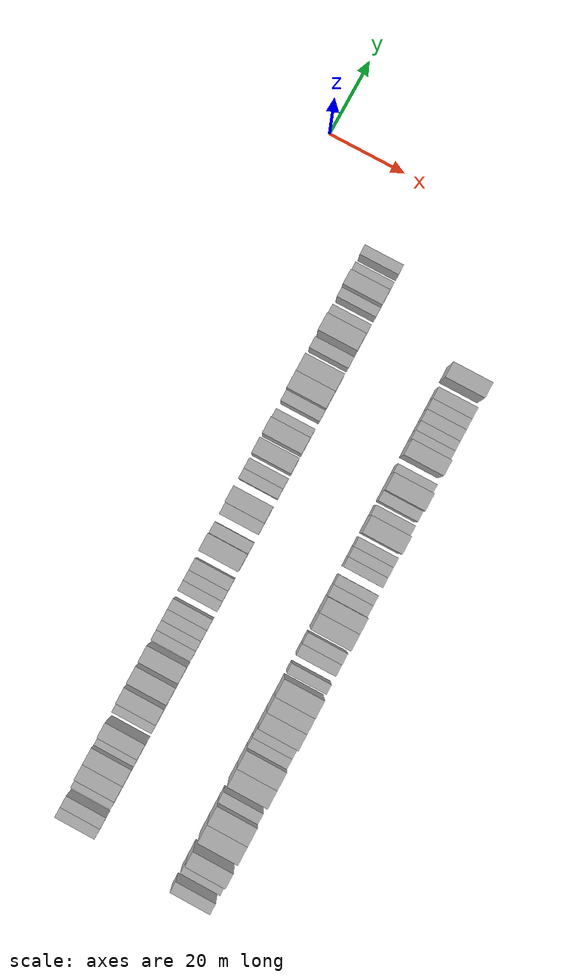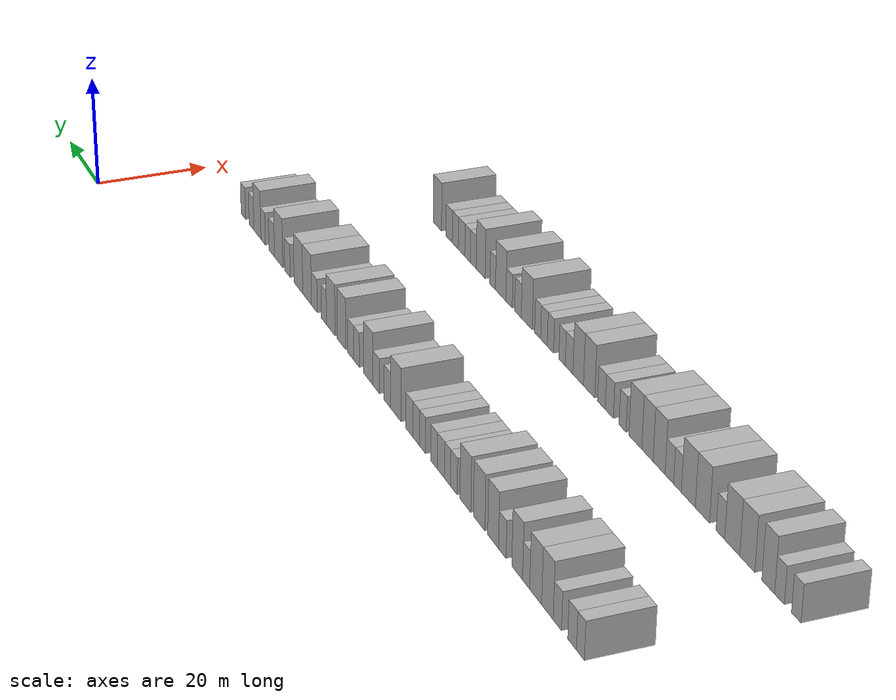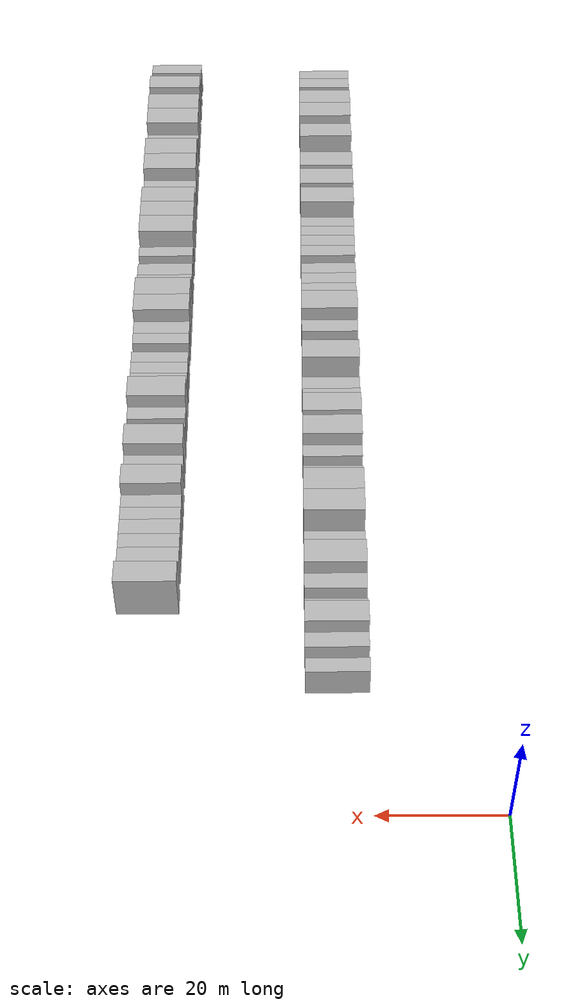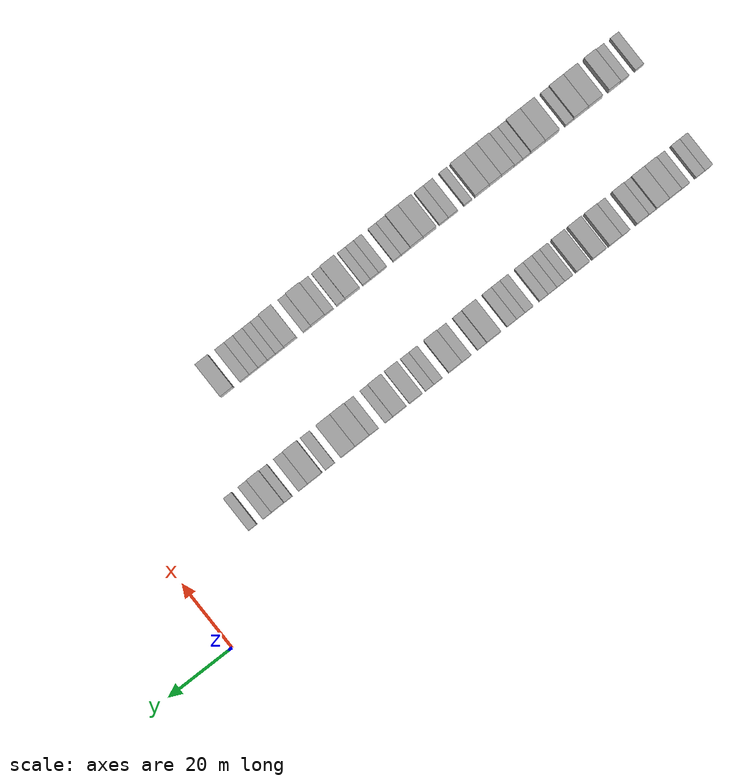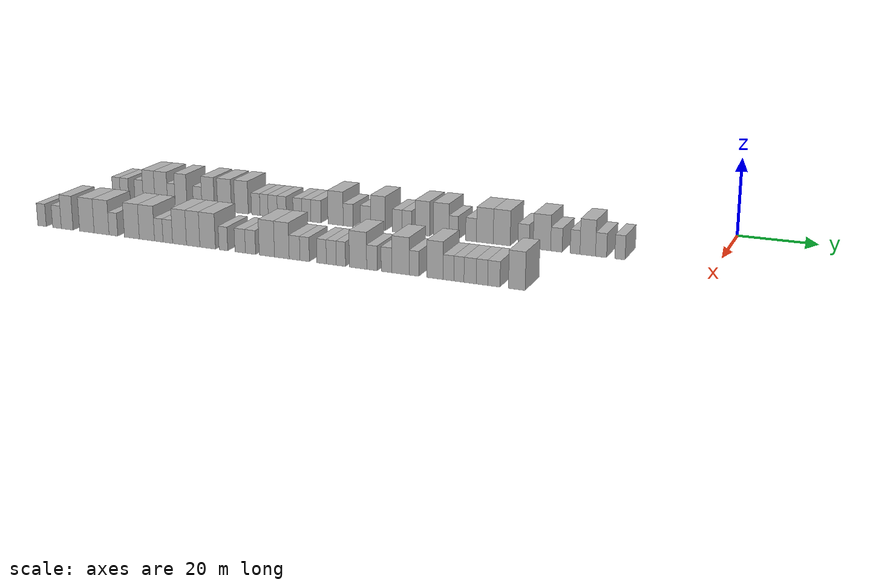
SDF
<sdf version="1.6">
 <world name="default">
  <model name="building_72">
   <static>1</static>
   <pose>25.0000 -165.1030 0 0.000000 0.000000 0.000000</pose>
   <link name="link">
    <pose>0 0 3.00 0 0 0</pose>
    <collision name="collision"><geometry><box><size>10.0000 2.4681 6.0000</size></box></geometry></collision>
    <visual name="visual">
     <cast_shadows>0</cast_shadows>
     <geometry><box><size>10.0000 2.4681 6.0000</size></box></geometry>
     <material>
      <script>
       <uri>model://HANNAS_wall/materials/scripts</uri>
       <uri>model://HANNAS_wall/materials/textures</uri>
       <name>vrc/HANNAS_wall</name>
      </script>
     </material>
    </visual>
   </link>
  </model>
  <model name="building_73">
   <static>1</static>
   <pose>25.0000 -162.4802 0 0.000000 0.000000 0.000000</pose>
   <link name="link">
    <pose>0 0 3.00 0 0 0</pose>
    <collision name="collision"><geometry><box><size>10.0000 2.7776 6.0000</size></box></geometry></collision>
    <visual name="visual">
     <cast_shadows>0</cast_shadows>
     <geometry><box><size>10.0000 2.7776 6.0000</size></box></geometry>
     <material>
      <script>
       <uri>model://HANNAS_wall/materials/scripts</uri>
       <uri>model://HANNAS_wall/materials/textures</uri>
       <name>vrc/HANNAS_wall</name>
      </script>
     </material>
    </visual>
   </link>
  </model>
  <model name="building_74">
   <static>1</static>
   <pose>25.0000 -157.7493 0 0.000000 0.000000 0.000000</pose>
   <link name="link">
    <pose>0 0 3.00 0 0 0</pose>
    <collision name="collision"><geometry><box><size>10.0000 2.6841 6.0000</size></box></geometry></collision>
    <visual name="visual">
     <cast_shadows>0</cast_shadows>
     <geometry><box><size>10.0000 2.6841 6.0000</size></box></geometry>
     <material>
      <script>
       <uri>model://HANNAS_wall/materials/scripts</uri>
       <uri>model://HANNAS_wall/materials/textures</uri>
       <name>vrc/HANNAS_wall</name>
      </script>
     </material>
    </visual>
   </link>
  </model>
  <model name="building_75">
   <static>1</static>
   <pose>25.0000 -154.5249 0 0.000000 0.000000 0.000000</pose>
   <link name="link">
    <pose>0 0 4.50 0 0 0</pose>
    <collision name="collision"><geometry><box><size>10.0000 3.7647 9.0000</size></box></geometry></collision>
    <visual name="visual">
     <cast_shadows>0</cast_shadows>
     <geometry><box><size>10.0000 3.7647 9.0000</size></box></geometry>
     <material>
      <script>
       <uri>model://HANNAS_wall/materials/scripts</uri>
       <uri>model://HANNAS_wall/materials/textures</uri>
       <name>vrc/HANNAS_wall</name>
      </script>
     </material>
    </visual>
   </link>
  </model>
  <model name="building_76">
   <static>1</static>
   <pose>25.0000 -150.6163 0 0.000000 0.000000 0.000000</pose>
   <link name="link">
    <pose>0 0 4.50 0 0 0</pose>
    <collision name="collision"><geometry><box><size>10.0000 4.0527 9.0000</size></box></geometry></collision>
    <visual name="visual">
     <cast_shadows>0</cast_shadows>
     <geometry><box><size>10.0000 4.0527 9.0000</size></box></geometry>
     <material>
      <script>
       <uri>model://HANNAS_wall/materials/scripts</uri>
       <uri>model://HANNAS_wall/materials/textures</uri>
       <name>vrc/HANNAS_wall</name>
      </script>
     </material>
    </visual>
   </link>
  </model>
  <model name="building_77">
   <static>1</static>
   <pose>25.0000 -147.3833 0 0.000000 0.000000 0.000000</pose>
   <link name="link">
    <pose>0 0 3.00 0 0 0</pose>
    <collision name="collision"><geometry><box><size>10.0000 2.4133 6.0000</size></box></geometry></collision>
    <visual name="visual">
     <cast_shadows>0</cast_shadows>
     <geometry><box><size>10.0000 2.4133 6.0000</size></box></geometry>
     <material>
      <script>
       <uri>model://HANNAS_wall/materials/scripts</uri>
       <uri>model://HANNAS_wall/materials/textures</uri>
       <name>vrc/HANNAS_wall</name>
      </script>
     </material>
    </visual>
   </link>
  </model>
  <model name="building_78">
   <static>1</static>
   <pose>25.0000 -144.3076 0 0.000000 0.000000 0.000000</pose>
   <link name="link">
    <pose>0 0 4.50 0 0 0</pose>
    <collision name="collision"><geometry><box><size>10.0000 3.7380 9.0000</size></box></geometry></collision>
    <visual name="visual">
     <cast_shadows>0</cast_shadows>
     <geometry><box><size>10.0000 3.7380 9.0000</size></box></geometry>
     <material>
      <script>
       <uri>model://HANNAS_wall/materials/scripts</uri>
       <uri>model://HANNAS_wall/materials/textures</uri>
       <name>vrc/HANNAS_wall</name>
      </script>
     </material>
    </visual>
   </link>
  </model>
  <model name="building_79">
   <static>1</static>
   <pose>25.0000 -139.1080 0 0.000000 0.000000 0.000000</pose>
   <link name="link">
    <pose>0 0 3.00 0 0 0</pose>
    <collision name="collision"><geometry><box><size>10.0000 2.6612 6.0000</size></box></geometry></collision>
    <visual name="visual">
     <cast_shadows>0</cast_shadows>
     <geometry><box><size>10.0000 2.6612 6.0000</size></box></geometry>
     <material>
      <script>
       <uri>model://HANNAS_wall/materials/scripts</uri>
       <uri>model://HANNAS_wall/materials/textures</uri>
       <name>vrc/HANNAS_wall</name>
      </script>
     </material>
    </visual>
   </link>
  </model>
  <model name="building_80">
   <static>1</static>
   <pose>25.0000 -135.8279 0 0.000000 0.000000 0.000000</pose>
   <link name="link">
    <pose>0 0 4.50 0 0 0</pose>
    <collision name="collision"><geometry><box><size>10.0000 3.8991 9.0000</size></box></geometry></collision>
    <visual name="visual">
     <cast_shadows>0</cast_shadows>
     <geometry><box><size>10.0000 3.8991 9.0000</size></box></geometry>
     <material>
      <script>
       <uri>model://HANNAS_wall/materials/scripts</uri>
       <uri>model://HANNAS_wall/materials/textures</uri>
       <name>vrc/HANNAS_wall</name>
      </script>
     </material>
    </visual>
   </link>
  </model>
  <model name="building_81">
   <static>1</static>
   <pose>25.0000 -130.7583 0 0.000000 0.000000 0.000000</pose>
   <link name="link">
    <pose>0 0 4.50 0 0 0</pose>
    <collision name="collision"><geometry><box><size>10.0000 4.2401 9.0000</size></box></geometry></collision>
    <visual name="visual">
     <cast_shadows>0</cast_shadows>
     <geometry><box><size>10.0000 4.2401 9.0000</size></box></geometry>
     <material>
      <script>
       <uri>model://HANNAS_wall/materials/scripts</uri>
       <uri>model://HANNAS_wall/materials/textures</uri>
       <name>vrc/HANNAS_wall</name>
      </script>
     </material>
    </visual>
   </link>
  </model>
  <model name="building_82">
   <static>1</static>
   <pose>25.0000 -125.5803 0 0.000000 0.000000 0.000000</pose>
   <link name="link">
    <pose>0 0 4.50 0 0 0</pose>
    <collision name="collision"><geometry><box><size>10.0000 4.1160 9.0000</size></box></geometry></collision>
    <visual name="visual">
     <cast_shadows>0</cast_shadows>
     <geometry><box><size>10.0000 4.1160 9.0000</size></box></geometry>
     <material>
      <script>
       <uri>model://HANNAS_wall/materials/scripts</uri>
       <uri>model://HANNAS_wall/materials/textures</uri>
       <name>vrc/HANNAS_wall</name>
      </script>
     </material>
    </visual>
   </link>
  </model>
  <model name="building_83">
   <static>1</static>
   <pose>25.0000 -121.2455 0 0.000000 0.000000 0.000000</pose>
   <link name="link">
    <pose>0 0 3.00 0 0 0</pose>
    <collision name="collision"><geometry><box><size>10.0000 2.5537 6.0000</size></box></geometry></collision>
    <visual name="visual">
     <cast_shadows>0</cast_shadows>
     <geometry><box><size>10.0000 2.5537 6.0000</size></box></geometry>
     <material>
      <script>
       <uri>model://HANNAS_wall/materials/scripts</uri>
       <uri>model://HANNAS_wall/materials/textures</uri>
       <name>vrc/HANNAS_wall</name>
      </script>
     </material>
    </visual>
   </link>
  </model>
  <model name="building_84">
   <static>1</static>
   <pose>25.0000 -118.7576 0 0.000000 0.000000 0.000000</pose>
   <link name="link">
    <pose>0 0 3.00 0 0 0</pose>
    <collision name="collision"><geometry><box><size>10.0000 2.4220 6.0000</size></box></geometry></collision>
    <visual name="visual">
     <cast_shadows>0</cast_shadows>
     <geometry><box><size>10.0000 2.4220 6.0000</size></box></geometry>
     <material>
      <script>
       <uri>model://HANNAS_wall/materials/scripts</uri>
       <uri>model://HANNAS_wall/materials/textures</uri>
       <name>vrc/HANNAS_wall</name>
      </script>
     </material>
    </visual>
   </link>
  </model>
  <model name="building_85">
   <static>1</static>
   <pose>25.0000 -116.1645 0 0.000000 0.000000 0.000000</pose>
   <link name="link">
    <pose>0 0 3.00 0 0 0</pose>
    <collision name="collision"><geometry><box><size>10.0000 2.7643 6.0000</size></box></geometry></collision>
    <visual name="visual">
     <cast_shadows>0</cast_shadows>
     <geometry><box><size>10.0000 2.7643 6.0000</size></box></geometry>
     <material>
      <script>
       <uri>model://HANNAS_wall/materials/scripts</uri>
       <uri>model://HANNAS_wall/materials/textures</uri>
       <name>vrc/HANNAS_wall</name>
      </script>
     </material>
    </visual>
   </link>
  </model>
  <model name="building_86">
   <static>1</static>
   <pose>25.0000 -113.4444 0 0.000000 0.000000 0.000000</pose>
   <link name="link">
    <pose>0 0 3.00 0 0 0</pose>
    <collision name="collision"><geometry><box><size>10.0000 2.6759 6.0000</size></box></geometry></collision>
    <visual name="visual">
     <cast_shadows>0</cast_shadows>
     <geometry><box><size>10.0000 2.6759 6.0000</size></box></geometry>
     <material>
      <script>
       <uri>model://HANNAS_wall/materials/scripts</uri>
       <uri>model://HANNAS_wall/materials/textures</uri>
       <name>vrc/HANNAS_wall</name>
      </script>
     </material>
    </visual>
   </link>
  </model>
  <model name="building_87">
   <static>1</static>
   <pose>25.0000 -108.8282 0 0.000000 0.000000 0.000000</pose>
   <link name="link">
    <pose>0 0 3.00 0 0 0</pose>
    <collision name="collision"><geometry><box><size>10.0000 2.5565 6.0000</size></box></geometry></collision>
    <visual name="visual">
     <cast_shadows>0</cast_shadows>
     <geometry><box><size>10.0000 2.5565 6.0000</size></box></geometry>
     <material>
      <script>
       <uri>model://HANNAS_wall/materials/scripts</uri>
       <uri>model://HANNAS_wall/materials/textures</uri>
       <name>vrc/HANNAS_wall</name>
      </script>
     </material>
    </visual>
   </link>
  </model>
  <model name="building_88">
   <static>1</static>
   <pose>25.0000 -106.2342 0 0.000000 0.000000 0.000000</pose>
   <link name="link">
    <pose>0 0 3.00 0 0 0</pose>
    <collision name="collision"><geometry><box><size>10.0000 2.6315 6.0000</size></box></geometry></collision>
    <visual name="visual">
     <cast_shadows>0</cast_shadows>
     <geometry><box><size>10.0000 2.6315 6.0000</size></box></geometry>
     <material>
      <script>
       <uri>model://HANNAS_wall/materials/scripts</uri>
       <uri>model://HANNAS_wall/materials/textures</uri>
       <name>vrc/HANNAS_wall</name>
      </script>
     </material>
    </visual>
   </link>
  </model>
  <model name="building_89">
   <static>1</static>
   <pose>25.0000 -103.4406 0 0.000000 0.000000 0.000000</pose>
   <link name="link">
    <pose>0 0 3.00 0 0 0</pose>
    <collision name="collision"><geometry><box><size>10.0000 2.9558 6.0000</size></box></geometry></collision>
    <visual name="visual">
     <cast_shadows>0</cast_shadows>
     <geometry><box><size>10.0000 2.9558 6.0000</size></box></geometry>
     <material>
      <script>
       <uri>model://HANNAS_wall/materials/scripts</uri>
       <uri>model://HANNAS_wall/materials/textures</uri>
       <name>vrc/HANNAS_wall</name>
      </script>
     </material>
    </visual>
   </link>
  </model>
  <model name="building_90">
   <static>1</static>
   <pose>25.0000 -97.7646 0 0.000000 0.000000 0.000000</pose>
   <link name="link">
    <pose>0 0 4.50 0 0 0</pose>
    <collision name="collision"><geometry><box><size>10.0000 4.3961 9.0000</size></box></geometry></collision>
    <visual name="visual">
     <cast_shadows>0</cast_shadows>
     <geometry><box><size>10.0000 4.3961 9.0000</size></box></geometry>
     <material>
      <script>
       <uri>model://HANNAS_wall/materials/scripts</uri>
       <uri>model://HANNAS_wall/materials/textures</uri>
       <name>vrc/HANNAS_wall</name>
      </script>
     </material>
    </visual>
   </link>
  </model>
  <model name="building_91">
   <static>1</static>
   <pose>25.0000 -94.1478 0 0.000000 0.000000 0.000000</pose>
   <link name="link">
    <pose>0 0 3.00 0 0 0</pose>
    <collision name="collision"><geometry><box><size>10.0000 2.8377 6.0000</size></box></geometry></collision>
    <visual name="visual">
     <cast_shadows>0</cast_shadows>
     <geometry><box><size>10.0000 2.8377 6.0000</size></box></geometry>
     <material>
      <script>
       <uri>model://HANNAS_wall/materials/scripts</uri>
       <uri>model://HANNAS_wall/materials/textures</uri>
       <name>vrc/HANNAS_wall</name>
      </script>
     </material>
    </visual>
   </link>
  </model>
  <model name="building_92">
   <static>1</static>
   <pose>25.0000 -89.2691 0 0.000000 0.000000 0.000000</pose>
   <link name="link">
    <pose>0 0 3.00 0 0 0</pose>
    <collision name="collision"><geometry><box><size>10.0000 2.9197 6.0000</size></box></geometry></collision>
    <visual name="visual">
     <cast_shadows>0</cast_shadows>
     <geometry><box><size>10.0000 2.9197 6.0000</size></box></geometry>
     <material>
      <script>
       <uri>model://HANNAS_wall/materials/scripts</uri>
       <uri>model://HANNAS_wall/materials/textures</uri>
       <name>vrc/HANNAS_wall</name>
      </script>
     </material>
    </visual>
   </link>
  </model>
  <model name="building_93">
   <static>1</static>
   <pose>25.0000 -85.7509 0 0.000000 0.000000 0.000000</pose>
   <link name="link">
    <pose>0 0 4.50 0 0 0</pose>
    <collision name="collision"><geometry><box><size>10.0000 4.1166 9.0000</size></box></geometry></collision>
    <visual name="visual">
     <cast_shadows>0</cast_shadows>
     <geometry><box><size>10.0000 4.1166 9.0000</size></box></geometry>
     <material>
      <script>
       <uri>model://HANNAS_wall/materials/scripts</uri>
       <uri>model://HANNAS_wall/materials/textures</uri>
       <name>vrc/HANNAS_wall</name>
      </script>
     </material>
    </visual>
   </link>
  </model>
  <model name="building_94">
   <static>1</static>
   <pose>25.0000 -80.3821 0 0.000000 0.000000 0.000000</pose>
   <link name="link">
    <pose>0 0 3.00 0 0 0</pose>
    <collision name="collision"><geometry><box><size>10.0000 2.6212 6.0000</size></box></geometry></collision>
    <visual name="visual">
     <cast_shadows>0</cast_shadows>
     <geometry><box><size>10.0000 2.6212 6.0000</size></box></geometry>
     <material>
      <script>
       <uri>model://HANNAS_wall/materials/scripts</uri>
       <uri>model://HANNAS_wall/materials/textures</uri>
       <name>vrc/HANNAS_wall</name>
      </script>
     </material>
    </visual>
   </link>
  </model>
  <model name="building_95">
   <static>1</static>
   <pose>25.0000 -77.7523 0 0.000000 0.000000 0.000000</pose>
   <link name="link">
    <pose>0 0 3.00 0 0 0</pose>
    <collision name="collision"><geometry><box><size>10.0000 2.6384 6.0000</size></box></geometry></collision>
    <visual name="visual">
     <cast_shadows>0</cast_shadows>
     <geometry><box><size>10.0000 2.6384 6.0000</size></box></geometry>
     <material>
      <script>
       <uri>model://HANNAS_wall/materials/scripts</uri>
       <uri>model://HANNAS_wall/materials/textures</uri>
       <name>vrc/HANNAS_wall</name>
      </script>
     </material>
    </visual>
   </link>
  </model>
  <model name="building_96">
   <static>1</static>
   <pose>25.0000 -73.4371 0 0.000000 0.000000 0.000000</pose>
   <link name="link">
    <pose>0 0 4.50 0 0 0</pose>
    <collision name="collision"><geometry><box><size>10.0000 3.9919 9.0000</size></box></geometry></collision>
    <visual name="visual">
     <cast_shadows>0</cast_shadows>
     <geometry><box><size>10.0000 3.9919 9.0000</size></box></geometry>
     <material>
      <script>
       <uri>model://HANNAS_wall/materials/scripts</uri>
       <uri>model://HANNAS_wall/materials/textures</uri>
       <name>vrc/HANNAS_wall</name>
      </script>
     </material>
    </visual>
   </link>
  </model>
  <model name="building_97">
   <static>1</static>
   <pose>25.0000 -68.3466 0 0.000000 0.000000 0.000000</pose>
   <link name="link">
    <pose>0 0 4.50 0 0 0</pose>
    <collision name="collision"><geometry><box><size>10.0000 4.1890 9.0000</size></box></geometry></collision>
    <visual name="visual">
     <cast_shadows>0</cast_shadows>
     <geometry><box><size>10.0000 4.1890 9.0000</size></box></geometry>
     <material>
      <script>
       <uri>model://HANNAS_wall/materials/scripts</uri>
       <uri>model://HANNAS_wall/materials/textures</uri>
       <name>vrc/HANNAS_wall</name>
      </script>
     </material>
    </visual>
   </link>
  </model>
  <model name="building_98">
   <static>1</static>
   <pose>25.0000 -65.0166 0 0.000000 0.000000 0.000000</pose>
   <link name="link">
    <pose>0 0 3.00 0 0 0</pose>
    <collision name="collision"><geometry><box><size>10.0000 2.4710 6.0000</size></box></geometry></collision>
    <visual name="visual">
     <cast_shadows>0</cast_shadows>
     <geometry><box><size>10.0000 2.4710 6.0000</size></box></geometry>
     <material>
      <script>
       <uri>model://HANNAS_wall/materials/scripts</uri>
       <uri>model://HANNAS_wall/materials/textures</uri>
       <name>vrc/HANNAS_wall</name>
      </script>
     </material>
    </visual>
   </link>
  </model>
  <model name="building_99">
   <static>1</static>
   <pose>25.0000 -60.3462 0 0.000000 0.000000 0.000000</pose>
   <link name="link">
    <pose>0 0 3.00 0 0 0</pose>
    <collision name="collision"><geometry><box><size>10.0000 2.8699 6.0000</size></box></geometry></collision>
    <visual name="visual">
     <cast_shadows>0</cast_shadows>
     <geometry><box><size>10.0000 2.8699 6.0000</size></box></geometry>
     <material>
      <script>
       <uri>model://HANNAS_wall/materials/scripts</uri>
       <uri>model://HANNAS_wall/materials/textures</uri>
       <name>vrc/HANNAS_wall</name>
      </script>
     </material>
    </visual>
   </link>
  </model>
  <model name="building_100">
   <static>1</static>
   <pose>25.0000 -56.6935 0 0.000000 0.000000 0.000000</pose>
   <link name="link">
    <pose>0 0 4.50 0 0 0</pose>
    <collision name="collision"><geometry><box><size>10.0000 4.4355 9.0000</size></box></geometry></collision>
    <visual name="visual">
     <cast_shadows>0</cast_shadows>
     <geometry><box><size>10.0000 4.4355 9.0000</size></box></geometry>
     <material>
      <script>
       <uri>model://HANNAS_wall/materials/scripts</uri>
       <uri>model://HANNAS_wall/materials/textures</uri>
       <name>vrc/HANNAS_wall</name>
      </script>
     </material>
    </visual>
   </link>
  </model>
  <model name="building_101">
   <static>1</static>
   <pose>25.0000 -52.2645 0 0.000000 0.000000 0.000000</pose>
   <link name="link">
    <pose>0 0 4.50 0 0 0</pose>
    <collision name="collision"><geometry><box><size>10.0000 4.4225 9.0000</size></box></geometry></collision>
    <visual name="visual">
     <cast_shadows>0</cast_shadows>
     <geometry><box><size>10.0000 4.4225 9.0000</size></box></geometry>
     <material>
      <script>
       <uri>model://HANNAS_wall/materials/scripts</uri>
       <uri>model://HANNAS_wall/materials/textures</uri>
       <name>vrc/HANNAS_wall</name>
      </script>
     </material>
    </visual>
   </link>
  </model>
  <model name="building_102">
   <static>1</static>
   <pose>25.0000 -46.5955 0 0.000000 0.000000 0.000000</pose>
   <link name="link">
    <pose>0 0 3.00 0 0 0</pose>
    <collision name="collision"><geometry><box><size>10.0000 2.9155 6.0000</size></box></geometry></collision>
    <visual name="visual">
     <cast_shadows>0</cast_shadows>
     <geometry><box><size>10.0000 2.9155 6.0000</size></box></geometry>
     <material>
      <script>
       <uri>model://HANNAS_wall/materials/scripts</uri>
       <uri>model://HANNAS_wall/materials/textures</uri>
       <name>vrc/HANNAS_wall</name>
      </script>
     </material>
    </visual>
   </link>
  </model>
  <model name="building_103">
   <static>1</static>
   <pose>25.0000 -41.9153 0 0.000000 0.000000 0.000000</pose>
   <link name="link">
    <pose>0 0 4.50 0 0 0</pose>
    <collision name="collision"><geometry><box><size>10.0000 4.4448 9.0000</size></box></geometry></collision>
    <visual name="visual">
     <cast_shadows>0</cast_shadows>
     <geometry><box><size>10.0000 4.4448 9.0000</size></box></geometry>
     <material>
      <script>
       <uri>model://HANNAS_wall/materials/scripts</uri>
       <uri>model://HANNAS_wall/materials/textures</uri>
       <name>vrc/HANNAS_wall</name>
      </script>
     </material>
    </visual>
   </link>
  </model>
  <model name="building_104">
   <static>1</static>
   <pose>25.0000 -38.2284 0 0.000000 0.000000 0.000000</pose>
   <link name="link">
    <pose>0 0 3.00 0 0 0</pose>
    <collision name="collision"><geometry><box><size>10.0000 2.9289 6.0000</size></box></geometry></collision>
    <visual name="visual">
     <cast_shadows>0</cast_shadows>
     <geometry><box><size>10.0000 2.9289 6.0000</size></box></geometry>
     <material>
      <script>
       <uri>model://HANNAS_wall/materials/scripts</uri>
       <uri>model://HANNAS_wall/materials/textures</uri>
       <name>vrc/HANNAS_wall</name>
      </script>
     </material>
    </visual>
   </link>
  </model>
  <model name="building_105">
   <static>1</static>
   <pose>25.0000 -33.5420 0 0.000000 0.000000 0.000000</pose>
   <link name="link">
    <pose>0 0 3.00 0 0 0</pose>
    <collision name="collision"><geometry><box><size>10.0000 2.4438 6.0000</size></box></geometry></collision>
    <visual name="visual">
     <cast_shadows>0</cast_shadows>
     <geometry><box><size>10.0000 2.4438 6.0000</size></box></geometry>
     <material>
      <script>
       <uri>model://HANNAS_wall/materials/scripts</uri>
       <uri>model://HANNAS_wall/materials/textures</uri>
       <name>vrc/HANNAS_wall</name>
      </script>
     </material>
    </visual>
   </link>
  </model>
  <model name="building_106">
   <static>1</static>
   <pose>25.0000 -30.3837 0 0.000000 0.000000 0.000000</pose>
   <link name="link">
    <pose>0 0 4.50 0 0 0</pose>
    <collision name="collision"><geometry><box><size>10.0000 3.8729 9.0000</size></box></geometry></collision>
    <visual name="visual">
     <cast_shadows>0</cast_shadows>
     <geometry><box><size>10.0000 3.8729 9.0000</size></box></geometry>
     <material>
      <script>
       <uri>model://HANNAS_wall/materials/scripts</uri>
       <uri>model://HANNAS_wall/materials/textures</uri>
       <name>vrc/HANNAS_wall</name>
      </script>
     </material>
    </visual>
   </link>
  </model>
  <model name="building_107">
   <static>1</static>
   <pose>25.0000 -27.0768 0 0.000000 0.000000 0.000000</pose>
   <link name="link">
    <pose>0 0 3.00 0 0 0</pose>
    <collision name="collision"><geometry><box><size>10.0000 2.7407 6.0000</size></box></geometry></collision>
    <visual name="visual">
     <cast_shadows>0</cast_shadows>
     <geometry><box><size>10.0000 2.7407 6.0000</size></box></geometry>
     <material>
      <script>
       <uri>model://HANNAS_wall/materials/scripts</uri>
       <uri>model://HANNAS_wall/materials/textures</uri>
       <name>vrc/HANNAS_wall</name>
      </script>
     </material>
    </visual>
   </link>
  </model>
  <model name="building_108">
   <static>1</static>
   <pose>25.0000 -22.4450 0 0.000000 0.000000 0.000000</pose>
   <link name="link">
    <pose>0 0 3.00 0 0 0</pose>
    <collision name="collision"><geometry><box><size>10.0000 2.5230 6.0000</size></box></geometry></collision>
    <visual name="visual">
     <cast_shadows>0</cast_shadows>
     <geometry><box><size>10.0000 2.5230 6.0000</size></box></geometry>
     <material>
      <script>
       <uri>model://HANNAS_wall/materials/scripts</uri>
       <uri>model://HANNAS_wall/materials/textures</uri>
       <name>vrc/HANNAS_wall</name>
      </script>
     </material>
    </visual>
   </link>
  </model>
  <model name="building_302">
   <static>1</static>
   <pose>55.0000 -167.1371 0 0.000000 0.000000 0.000000</pose>
   <link name="link">
    <pose>0 0 3.00 0 0 0</pose>
    <collision name="collision"><geometry><box><size>10.0000 2.6377 6.0000</size></box></geometry></collision>
    <visual name="visual">
     <cast_shadows>0</cast_shadows>
     <geometry><box><size>10.0000 2.6377 6.0000</size></box></geometry>
     <material>
      <script>
       <uri>model://HANNAS_wall/materials/scripts</uri>
       <uri>model://HANNAS_wall/materials/textures</uri>
       <name>vrc/HANNAS_wall</name>
      </script>
     </material>
    </visual>
   </link>
  </model>
  <model name="building_303">
   <static>1</static>
   <pose>55.0000 -162.4712 0 0.000000 0.000000 0.000000</pose>
   <link name="link">
    <pose>0 0 3.00 0 0 0</pose>
    <collision name="collision"><geometry><box><size>10.0000 2.6940 6.0000</size></box></geometry></collision>
    <visual name="visual">
     <cast_shadows>0</cast_shadows>
     <geometry><box><size>10.0000 2.6940 6.0000</size></box></geometry>
     <material>
      <script>
       <uri>model://HANNAS_wall/materials/scripts</uri>
       <uri>model://HANNAS_wall/materials/textures</uri>
       <name>vrc/HANNAS_wall</name>
      </script>
     </material>
    </visual>
   </link>
  </model>
  <model name="building_304">
   <static>1</static>
   <pose>55.0000 -159.2977 0 0.000000 0.000000 0.000000</pose>
   <link name="link">
    <pose>0 0 4.50 0 0 0</pose>
    <collision name="collision"><geometry><box><size>10.0000 3.6531 9.0000</size></box></geometry></collision>
    <visual name="visual">
     <cast_shadows>0</cast_shadows>
     <geometry><box><size>10.0000 3.6531 9.0000</size></box></geometry>
     <material>
      <script>
       <uri>model://HANNAS_wall/materials/scripts</uri>
       <uri>model://HANNAS_wall/materials/textures</uri>
       <name>vrc/HANNAS_wall</name>
      </script>
     </material>
    </visual>
   </link>
  </model>
  <model name="building_305">
   <static>1</static>
   <pose>55.0000 -153.2582 0 0.000000 0.000000 0.000000</pose>
   <link name="link">
    <pose>0 0 4.50 0 0 0</pose>
    <collision name="collision"><geometry><box><size>10.0000 4.4259 9.0000</size></box></geometry></collision>
    <visual name="visual">
     <cast_shadows>0</cast_shadows>
     <geometry><box><size>10.0000 4.4259 9.0000</size></box></geometry>
     <material>
      <script>
       <uri>model://HANNAS_wall/materials/scripts</uri>
       <uri>model://HANNAS_wall/materials/textures</uri>
       <name>vrc/HANNAS_wall</name>
      </script>
     </material>
    </visual>
   </link>
  </model>
  <model name="building_306">
   <static>1</static>
   <pose>55.0000 -148.7995 0 0.000000 0.000000 0.000000</pose>
   <link name="link">
    <pose>0 0 4.50 0 0 0</pose>
    <collision name="collision"><geometry><box><size>10.0000 4.4914 9.0000</size></box></geometry></collision>
    <visual name="visual">
     <cast_shadows>0</cast_shadows>
     <geometry><box><size>10.0000 4.4914 9.0000</size></box></geometry>
     <material>
      <script>
       <uri>model://HANNAS_wall/materials/scripts</uri>
       <uri>model://HANNAS_wall/materials/textures</uri>
       <name>vrc/HANNAS_wall</name>
      </script>
     </material>
    </visual>
   </link>
  </model>
  <model name="building_307">
   <static>1</static>
   <pose>55.0000 -145.2468 0 0.000000 0.000000 0.000000</pose>
   <link name="link">
    <pose>0 0 3.00 0 0 0</pose>
    <collision name="collision"><geometry><box><size>10.0000 2.6141 6.0000</size></box></geometry></collision>
    <visual name="visual">
     <cast_shadows>0</cast_shadows>
     <geometry><box><size>10.0000 2.6141 6.0000</size></box></geometry>
     <material>
      <script>
       <uri>model://HANNAS_wall/materials/scripts</uri>
       <uri>model://HANNAS_wall/materials/textures</uri>
       <name>vrc/HANNAS_wall</name>
      </script>
     </material>
    </visual>
   </link>
  </model>
  <model name="building_308">
   <static>1</static>
   <pose>55.0000 -139.7336 0 0.000000 0.000000 0.000000</pose>
   <link name="link">
    <pose>0 0 4.50 0 0 0</pose>
    <collision name="collision"><geometry><box><size>10.0000 4.4123 9.0000</size></box></geometry></collision>
    <visual name="visual">
     <cast_shadows>0</cast_shadows>
     <geometry><box><size>10.0000 4.4123 9.0000</size></box></geometry>
     <material>
      <script>
       <uri>model://HANNAS_wall/materials/scripts</uri>
       <uri>model://HANNAS_wall/materials/textures</uri>
       <name>vrc/HANNAS_wall</name>
      </script>
     </material>
    </visual>
   </link>
  </model>
  <model name="building_309">
   <static>1</static>
   <pose>55.0000 -135.3011 0 0.000000 0.000000 0.000000</pose>
   <link name="link">
    <pose>0 0 4.50 0 0 0</pose>
    <collision name="collision"><geometry><box><size>10.0000 4.4527 9.0000</size></box></geometry></collision>
    <visual name="visual">
     <cast_shadows>0</cast_shadows>
     <geometry><box><size>10.0000 4.4527 9.0000</size></box></geometry>
     <material>
      <script>
       <uri>model://HANNAS_wall/materials/scripts</uri>
       <uri>model://HANNAS_wall/materials/textures</uri>
       <name>vrc/HANNAS_wall</name>
      </script>
     </material>
    </visual>
   </link>
  </model>
  <model name="building_310">
   <static>1</static>
   <pose>55.0000 -131.8290 0 0.000000 0.000000 0.000000</pose>
   <link name="link">
    <pose>0 0 3.00 0 0 0</pose>
    <collision name="collision"><geometry><box><size>10.0000 2.4916 6.0000</size></box></geometry></collision>
    <visual name="visual">
     <cast_shadows>0</cast_shadows>
     <geometry><box><size>10.0000 2.4916 6.0000</size></box></geometry>
     <material>
      <script>
       <uri>model://HANNAS_wall/materials/scripts</uri>
       <uri>model://HANNAS_wall/materials/textures</uri>
       <name>vrc/HANNAS_wall</name>
      </script>
     </material>
    </visual>
   </link>
  </model>
  <model name="building_311">
   <static>1</static>
   <pose>55.0000 -129.2062 0 0.000000 0.000000 0.000000</pose>
   <link name="link">
    <pose>0 0 3.00 0 0 0</pose>
    <collision name="collision"><geometry><box><size>10.0000 2.7539 6.0000</size></box></geometry></collision>
    <visual name="visual">
     <cast_shadows>0</cast_shadows>
     <geometry><box><size>10.0000 2.7539 6.0000</size></box></geometry>
     <material>
      <script>
       <uri>model://HANNAS_wall/materials/scripts</uri>
       <uri>model://HANNAS_wall/materials/textures</uri>
       <name>vrc/HANNAS_wall</name>
      </script>
     </material>
    </visual>
   </link>
  </model>
  <model name="building_312">
   <static>1</static>
   <pose>55.0000 -125.8313 0 0.000000 0.000000 0.000000</pose>
   <link name="link">
    <pose>0 0 4.50 0 0 0</pose>
    <collision name="collision"><geometry><box><size>10.0000 3.9959 9.0000</size></box></geometry></collision>
    <visual name="visual">
     <cast_shadows>0</cast_shadows>
     <geometry><box><size>10.0000 3.9959 9.0000</size></box></geometry>
     <material>
      <script>
       <uri>model://HANNAS_wall/materials/scripts</uri>
       <uri>model://HANNAS_wall/materials/textures</uri>
       <name>vrc/HANNAS_wall</name>
      </script>
     </material>
    </visual>
   </link>
  </model>
  <model name="building_313">
   <static>1</static>
   <pose>55.0000 -121.9241 0 0.000000 0.000000 0.000000</pose>
   <link name="link">
    <pose>0 0 4.50 0 0 0</pose>
    <collision name="collision"><geometry><box><size>10.0000 3.8185 9.0000</size></box></geometry></collision>
    <visual name="visual">
     <cast_shadows>0</cast_shadows>
     <geometry><box><size>10.0000 3.8185 9.0000</size></box></geometry>
     <material>
      <script>
       <uri>model://HANNAS_wall/materials/scripts</uri>
       <uri>model://HANNAS_wall/materials/textures</uri>
       <name>vrc/HANNAS_wall</name>
      </script>
     </material>
    </visual>
   </link>
  </model>
  <model name="building_314">
   <static>1</static>
   <pose>55.0000 -117.8048 0 0.000000 0.000000 0.000000</pose>
   <link name="link">
    <pose>0 0 4.50 0 0 0</pose>
    <collision name="collision"><geometry><box><size>10.0000 4.4203 9.0000</size></box></geometry></collision>
    <visual name="visual">
     <cast_shadows>0</cast_shadows>
     <geometry><box><size>10.0000 4.4203 9.0000</size></box></geometry>
     <material>
      <script>
       <uri>model://HANNAS_wall/materials/scripts</uri>
       <uri>model://HANNAS_wall/materials/textures</uri>
       <name>vrc/HANNAS_wall</name>
      </script>
     </material>
    </visual>
   </link>
  </model>
  <model name="building_315">
   <static>1</static>
   <pose>55.0000 -113.3791 0 0.000000 0.000000 0.000000</pose>
   <link name="link">
    <pose>0 0 3.00 0 0 0</pose>
    <collision name="collision"><geometry><box><size>10.0000 2.4310 6.0000</size></box></geometry></collision>
    <visual name="visual">
     <cast_shadows>0</cast_shadows>
     <geometry><box><size>10.0000 2.4310 6.0000</size></box></geometry>
     <material>
      <script>
       <uri>model://HANNAS_wall/materials/scripts</uri>
       <uri>model://HANNAS_wall/materials/textures</uri>
       <name>vrc/HANNAS_wall</name>
      </script>
     </material>
    </visual>
   </link>
  </model>
  <model name="building_316">
   <static>1</static>
   <pose>55.0000 -108.7128 0 0.000000 0.000000 0.000000</pose>
   <link name="link">
    <pose>0 0 3.00 0 0 0</pose>
    <collision name="collision"><geometry><box><size>10.0000 2.9015 6.0000</size></box></geometry></collision>
    <visual name="visual">
     <cast_shadows>0</cast_shadows>
     <geometry><box><size>10.0000 2.9015 6.0000</size></box></geometry>
     <material>
      <script>
       <uri>model://HANNAS_wall/materials/scripts</uri>
       <uri>model://HANNAS_wall/materials/textures</uri>
       <name>vrc/HANNAS_wall</name>
      </script>
     </material>
    </visual>
   </link>
  </model>
  <model name="building_317">
   <static>1</static>
   <pose>55.0000 -105.8567 0 0.000000 0.000000 0.000000</pose>
   <link name="link">
    <pose>0 0 3.00 0 0 0</pose>
    <collision name="collision"><geometry><box><size>10.0000 2.8107 6.0000</size></box></geometry></collision>
    <visual name="visual">
     <cast_shadows>0</cast_shadows>
     <geometry><box><size>10.0000 2.8107 6.0000</size></box></geometry>
     <material>
      <script>
       <uri>model://HANNAS_wall/materials/scripts</uri>
       <uri>model://HANNAS_wall/materials/textures</uri>
       <name>vrc/HANNAS_wall</name>
      </script>
     </material>
    </visual>
   </link>
  </model>
  <model name="building_318">
   <static>1</static>
   <pose>55.0000 -101.3754 0 0.000000 0.000000 0.000000</pose>
   <link name="link">
    <pose>0 0 4.50 0 0 0</pose>
    <collision name="collision"><geometry><box><size>10.0000 4.1518 9.0000</size></box></geometry></collision>
    <visual name="visual">
     <cast_shadows>0</cast_shadows>
     <geometry><box><size>10.0000 4.1518 9.0000</size></box></geometry>
     <material>
      <script>
       <uri>model://HANNAS_wall/materials/scripts</uri>
       <uri>model://HANNAS_wall/materials/textures</uri>
       <name>vrc/HANNAS_wall</name>
      </script>
     </material>
    </visual>
   </link>
  </model>
  <model name="building_319">
   <static>1</static>
   <pose>55.0000 -97.3148 0 0.000000 0.000000 0.000000</pose>
   <link name="link">
    <pose>0 0 4.50 0 0 0</pose>
    <collision name="collision"><geometry><box><size>10.0000 3.9694 9.0000</size></box></geometry></collision>
    <visual name="visual">
     <cast_shadows>0</cast_shadows>
     <geometry><box><size>10.0000 3.9694 9.0000</size></box></geometry>
     <material>
      <script>
       <uri>model://HANNAS_wall/materials/scripts</uri>
       <uri>model://HANNAS_wall/materials/textures</uri>
       <name>vrc/HANNAS_wall</name>
      </script>
     </material>
    </visual>
   </link>
  </model>
  <model name="building_320">
   <static>1</static>
   <pose>55.0000 -93.8878 0 0.000000 0.000000 0.000000</pose>
   <link name="link">
    <pose>0 0 3.00 0 0 0</pose>
    <collision name="collision"><geometry><box><size>10.0000 2.8845 6.0000</size></box></geometry></collision>
    <visual name="visual">
     <cast_shadows>0</cast_shadows>
     <geometry><box><size>10.0000 2.8845 6.0000</size></box></geometry>
     <material>
      <script>
       <uri>model://HANNAS_wall/materials/scripts</uri>
       <uri>model://HANNAS_wall/materials/textures</uri>
       <name>vrc/HANNAS_wall</name>
      </script>
     </material>
    </visual>
   </link>
  </model>
  <model name="building_321">
   <static>1</static>
   <pose>55.0000 -91.1924 0 0.000000 0.000000 0.000000</pose>
   <link name="link">
    <pose>0 0 3.00 0 0 0</pose>
    <collision name="collision"><geometry><box><size>10.0000 2.5064 6.0000</size></box></geometry></collision>
    <visual name="visual">
     <cast_shadows>0</cast_shadows>
     <geometry><box><size>10.0000 2.5064 6.0000</size></box></geometry>
     <material>
      <script>
       <uri>model://HANNAS_wall/materials/scripts</uri>
       <uri>model://HANNAS_wall/materials/textures</uri>
       <name>vrc/HANNAS_wall</name>
      </script>
     </material>
    </visual>
   </link>
  </model>
  <model name="building_322">
   <static>1</static>
   <pose>55.0000 -86.6949 0 0.000000 0.000000 0.000000</pose>
   <link name="link">
    <pose>0 0 3.00 0 0 0</pose>
    <collision name="collision"><geometry><box><size>10.0000 2.4886 6.0000</size></box></geometry></collision>
    <visual name="visual">
     <cast_shadows>0</cast_shadows>
     <geometry><box><size>10.0000 2.4886 6.0000</size></box></geometry>
     <material>
      <script>
       <uri>model://HANNAS_wall/materials/scripts</uri>
       <uri>model://HANNAS_wall/materials/textures</uri>
       <name>vrc/HANNAS_wall</name>
      </script>
     </material>
    </visual>
   </link>
  </model>
  <model name="building_323">
   <static>1</static>
   <pose>55.0000 -84.1486 0 0.000000 0.000000 0.000000</pose>
   <link name="link">
    <pose>0 0 3.00 0 0 0</pose>
    <collision name="collision"><geometry><box><size>10.0000 2.6039 6.0000</size></box></geometry></collision>
    <visual name="visual">
     <cast_shadows>0</cast_shadows>
     <geometry><box><size>10.0000 2.6039 6.0000</size></box></geometry>
     <material>
      <script>
       <uri>model://HANNAS_wall/materials/scripts</uri>
       <uri>model://HANNAS_wall/materials/textures</uri>
       <name>vrc/HANNAS_wall</name>
      </script>
     </material>
    </visual>
   </link>
  </model>
  <model name="building_324">
   <static>1</static>
   <pose>55.0000 -81.6433 0 0.000000 0.000000 0.000000</pose>
   <link name="link">
    <pose>0 0 3.00 0 0 0</pose>
    <collision name="collision"><geometry><box><size>10.0000 2.4067 6.0000</size></box></geometry></collision>
    <visual name="visual">
     <cast_shadows>0</cast_shadows>
     <geometry><box><size>10.0000 2.4067 6.0000</size></box></geometry>
     <material>
      <script>
       <uri>model://HANNAS_wall/materials/scripts</uri>
       <uri>model://HANNAS_wall/materials/textures</uri>
       <name>vrc/HANNAS_wall</name>
      </script>
     </material>
    </visual>
   </link>
  </model>
  <model name="building_325">
   <static>1</static>
   <pose>55.0000 -77.2073 0 0.000000 0.000000 0.000000</pose>
   <link name="link">
    <pose>0 0 4.50 0 0 0</pose>
    <collision name="collision"><geometry><box><size>10.0000 4.4653 9.0000</size></box></geometry></collision>
    <visual name="visual">
     <cast_shadows>0</cast_shadows>
     <geometry><box><size>10.0000 4.4653 9.0000</size></box></geometry>
     <material>
      <script>
       <uri>model://HANNAS_wall/materials/scripts</uri>
       <uri>model://HANNAS_wall/materials/textures</uri>
       <name>vrc/HANNAS_wall</name>
      </script>
     </material>
    </visual>
   </link>
  </model>
  <model name="building_326">
   <static>1</static>
   <pose>55.0000 -73.6217 0 0.000000 0.000000 0.000000</pose>
   <link name="link">
    <pose>0 0 3.00 0 0 0</pose>
    <collision name="collision"><geometry><box><size>10.0000 2.7058 6.0000</size></box></geometry></collision>
    <visual name="visual">
     <cast_shadows>0</cast_shadows>
     <geometry><box><size>10.0000 2.7058 6.0000</size></box></geometry>
     <material>
      <script>
       <uri>model://HANNAS_wall/materials/scripts</uri>
       <uri>model://HANNAS_wall/materials/textures</uri>
       <name>vrc/HANNAS_wall</name>
      </script>
     </material>
    </visual>
   </link>
  </model>
  <model name="building_327">
   <static>1</static>
   <pose>55.0000 -69.9395 0 0.000000 0.000000 0.000000</pose>
   <link name="link">
    <pose>0 0 3.00 0 0 0</pose>
    <collision name="collision"><geometry><box><size>10.0000 2.6588 6.0000</size></box></geometry></collision>
    <visual name="visual">
     <cast_shadows>0</cast_shadows>
     <geometry><box><size>10.0000 2.6588 6.0000</size></box></geometry>
     <material>
      <script>
       <uri>model://HANNAS_wall/materials/scripts</uri>
       <uri>model://HANNAS_wall/materials/textures</uri>
       <name>vrc/HANNAS_wall</name>
      </script>
     </material>
    </visual>
   </link>
  </model>
  <model name="building_328">
   <static>1</static>
   <pose>55.0000 -66.4085 0 0.000000 0.000000 0.000000</pose>
   <link name="link">
    <pose>0 0 4.50 0 0 0</pose>
    <collision name="collision"><geometry><box><size>10.0000 4.4031 9.0000</size></box></geometry></collision>
    <visual name="visual">
     <cast_shadows>0</cast_shadows>
     <geometry><box><size>10.0000 4.4031 9.0000</size></box></geometry>
     <material>
      <script>
       <uri>model://HANNAS_wall/materials/scripts</uri>
       <uri>model://HANNAS_wall/materials/textures</uri>
       <name>vrc/HANNAS_wall</name>
      </script>
     </material>
    </visual>
   </link>
  </model>
  <model name="building_329">
   <static>1</static>
   <pose>55.0000 -62.9927 0 0.000000 0.000000 0.000000</pose>
   <link name="link">
    <pose>0 0 3.00 0 0 0</pose>
    <collision name="collision"><geometry><box><size>10.0000 2.4287 6.0000</size></box></geometry></collision>
    <visual name="visual">
     <cast_shadows>0</cast_shadows>
     <geometry><box><size>10.0000 2.4287 6.0000</size></box></geometry>
     <material>
      <script>
       <uri>model://HANNAS_wall/materials/scripts</uri>
       <uri>model://HANNAS_wall/materials/textures</uri>
       <name>vrc/HANNAS_wall</name>
      </script>
     </material>
    </visual>
   </link>
  </model>
  <model name="building_330">
   <static>1</static>
   <pose>55.0000 -57.7790 0 0.000000 0.000000 0.000000</pose>
   <link name="link">
    <pose>0 0 4.50 0 0 0</pose>
    <collision name="collision"><geometry><box><size>10.0000 3.9987 9.0000</size></box></geometry></collision>
    <visual name="visual">
     <cast_shadows>0</cast_shadows>
     <geometry><box><size>10.0000 3.9987 9.0000</size></box></geometry>
     <material>
      <script>
       <uri>model://HANNAS_wall/materials/scripts</uri>
       <uri>model://HANNAS_wall/materials/textures</uri>
       <name>vrc/HANNAS_wall</name>
      </script>
     </material>
    </visual>
   </link>
  </model>
  <model name="building_331">
   <static>1</static>
   <pose>55.0000 -54.4778 0 0.000000 0.000000 0.000000</pose>
   <link name="link">
    <pose>0 0 3.00 0 0 0</pose>
    <collision name="collision"><geometry><box><size>10.0000 2.6037 6.0000</size></box></geometry></collision>
    <visual name="visual">
     <cast_shadows>0</cast_shadows>
     <geometry><box><size>10.0000 2.6037 6.0000</size></box></geometry>
     <material>
      <script>
       <uri>model://HANNAS_wall/materials/scripts</uri>
       <uri>model://HANNAS_wall/materials/textures</uri>
       <name>vrc/HANNAS_wall</name>
      </script>
     </material>
    </visual>
   </link>
  </model>
  <model name="building_332">
   <static>1</static>
   <pose>55.0000 -51.9457 0 0.000000 0.000000 0.000000</pose>
   <link name="link">
    <pose>0 0 3.00 0 0 0</pose>
    <collision name="collision"><geometry><box><size>10.0000 2.4606 6.0000</size></box></geometry></collision>
    <visual name="visual">
     <cast_shadows>0</cast_shadows>
     <geometry><box><size>10.0000 2.4606 6.0000</size></box></geometry>
     <material>
      <script>
       <uri>model://HANNAS_wall/materials/scripts</uri>
       <uri>model://HANNAS_wall/materials/textures</uri>
       <name>vrc/HANNAS_wall</name>
      </script>
     </material>
    </visual>
   </link>
  </model>
  <model name="building_333">
   <static>1</static>
   <pose>55.0000 -49.2267 0 0.000000 0.000000 0.000000</pose>
   <link name="link">
    <pose>0 0 3.00 0 0 0</pose>
    <collision name="collision"><geometry><box><size>10.0000 2.9773 6.0000</size></box></geometry></collision>
    <visual name="visual">
     <cast_shadows>0</cast_shadows>
     <geometry><box><size>10.0000 2.9773 6.0000</size></box></geometry>
     <material>
      <script>
       <uri>model://HANNAS_wall/materials/scripts</uri>
       <uri>model://HANNAS_wall/materials/textures</uri>
       <name>vrc/HANNAS_wall</name>
      </script>
     </material>
    </visual>
   </link>
  </model>
  <model name="building_334">
   <static>1</static>
   <pose>55.0000 -46.3786 0 0.000000 0.000000 0.000000</pose>
   <link name="link">
    <pose>0 0 3.00 0 0 0</pose>
    <collision name="collision"><geometry><box><size>10.0000 2.7189 6.0000</size></box></geometry></collision>
    <visual name="visual">
     <cast_shadows>0</cast_shadows>
     <geometry><box><size>10.0000 2.7189 6.0000</size></box></geometry>
     <material>
      <script>
       <uri>model://HANNAS_wall/materials/scripts</uri>
       <uri>model://HANNAS_wall/materials/textures</uri>
       <name>vrc/HANNAS_wall</name>
      </script>
     </material>
    </visual>
   </link>
  </model>
  <model name="building_335">
   <static>1</static>
   <pose>55.0000 -43.5365 0 0.000000 0.000000 0.000000</pose>
   <link name="link">
    <pose>0 0 3.00 0 0 0</pose>
    <collision name="collision"><geometry><box><size>10.0000 2.9654 6.0000</size></box></geometry></collision>
    <visual name="visual">
     <cast_shadows>0</cast_shadows>
     <geometry><box><size>10.0000 2.9654 6.0000</size></box></geometry>
     <material>
      <script>
       <uri>model://HANNAS_wall/materials/scripts</uri>
       <uri>model://HANNAS_wall/materials/textures</uri>
       <name>vrc/HANNAS_wall</name>
      </script>
     </material>
    </visual>
   </link>
  </model>
  <model name="building_336">
   <static>1</static>
   <pose>55.0000 -38.0790 0 0.000000 0.000000 0.000000</pose>
   <link name="link">
    <pose>0 0 4.50 0 0 0</pose>
    <collision name="collision"><geometry><box><size>10.0000 3.9496 9.0000</size></box></geometry></collision>
    <visual name="visual">
     <cast_shadows>0</cast_shadows>
     <geometry><box><size>10.0000 3.9496 9.0000</size></box></geometry>
     <material>
      <script>
       <uri>model://HANNAS_wall/materials/scripts</uri>
       <uri>model://HANNAS_wall/materials/textures</uri>
       <name>vrc/HANNAS_wall</name>
      </script>
     </material>
    </visual>
   </link>
  </model>
 </world>
</sdf>
